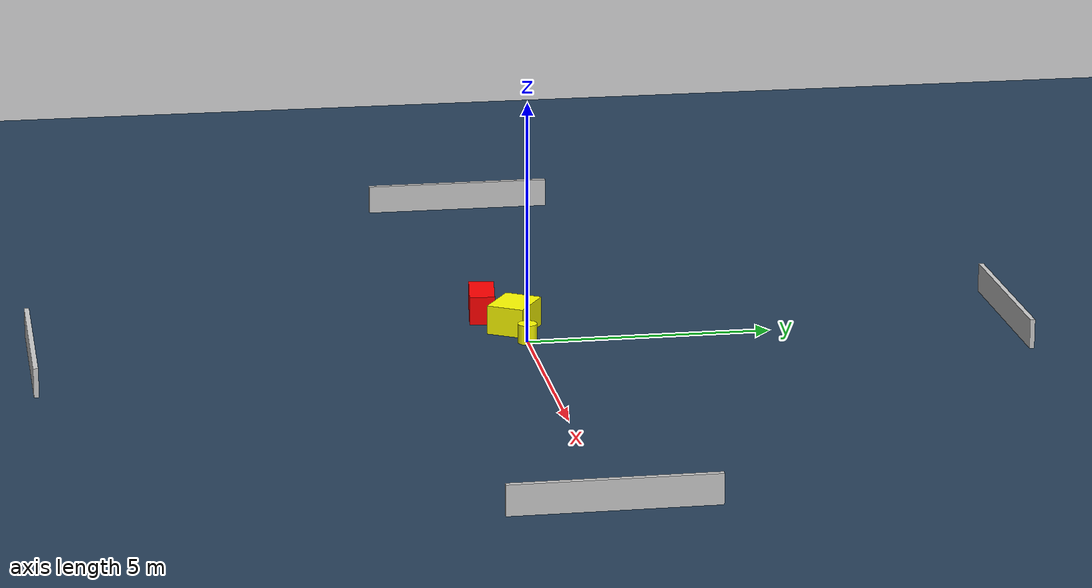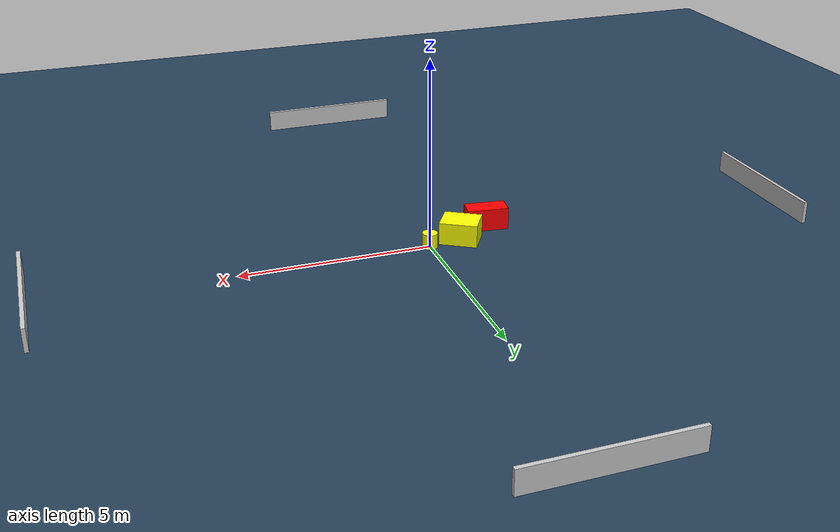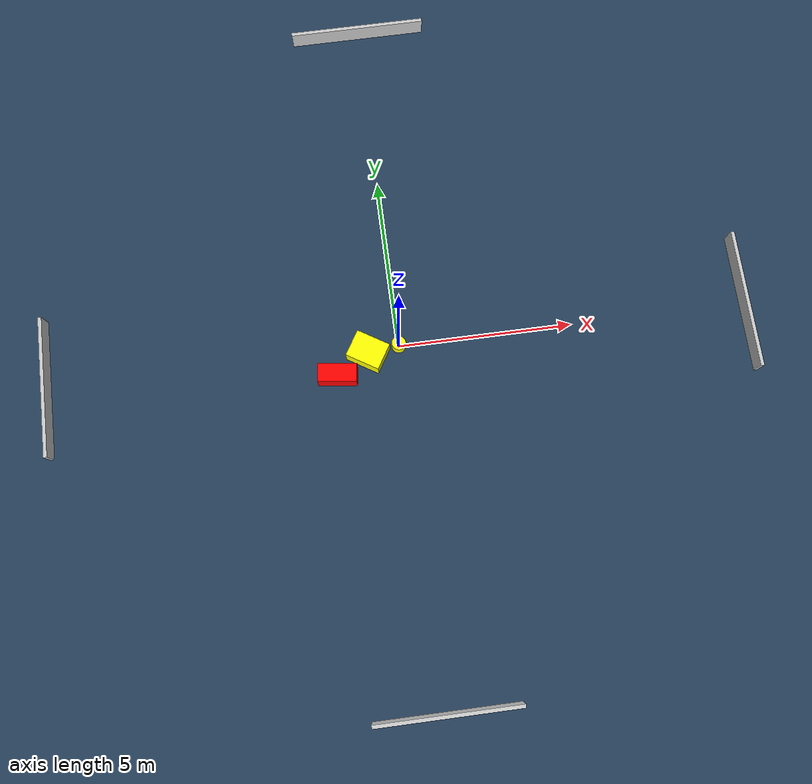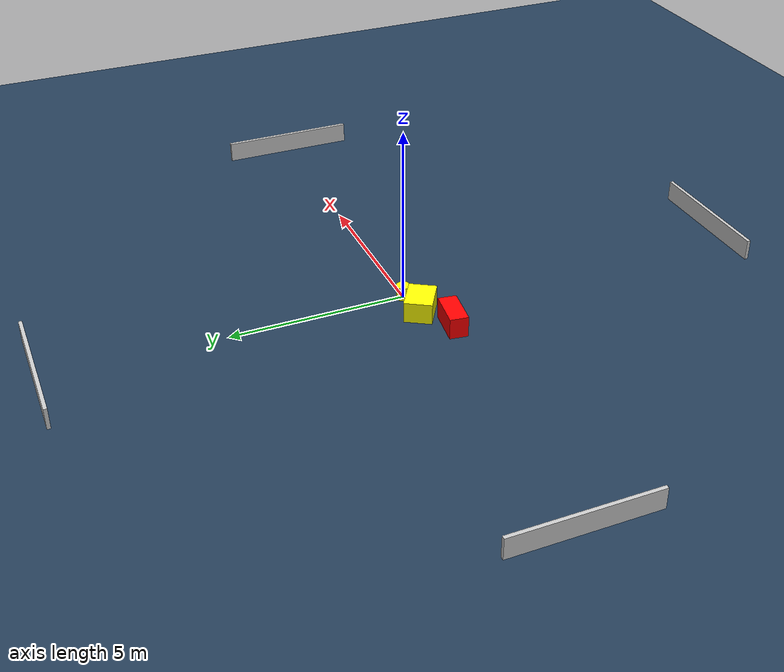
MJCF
<?xml version="1.0" ?>
<mujoco model="generated_environment">
  <option timestep="0.01" integrator="RK4" cone="elliptic"/>
  <default>
    <geom density="1"/>
  </default>
  <asset>
    <texture builtin="gradient" height="3072" name="skybox" rgb1="0.3 0.5 0.7" rgb2="0 0 0" type="skybox" width="512"/>
    <texture builtin="checker" height="300" name="groundplane" rgb1="0.2 0.3 0.4" rgb2="0.1 0.2 0.3" type="2d" width="300"/>
    <material name="groundplane" reflectance="0.2" texrepeat="5 5" texture="groundplane"/>
  </asset>
  <worldbody>
    <light dir="0 0 -1" directional="true" pos="0 0 1.5"/>
    <geom condim="3" friction="0.5 0.005 0.001" material="groundplane" name="floor" pos="0 0 0" size="0 0 0.05" type="plane"/>
    <body name="walls">
      <geom name="wall_1" condim="4" pos="-10.0 0.0 0.3" rgba="0.800000011920929 0.800000011920929 0.800000011920929 1.0" size="0.05 2.0 0.3" type="box"/>
      <geom name="wall_2" condim="4" pos="10.0 0.0 0.3" rgba="0.800000011920929 0.800000011920929 0.800000011920929 1.0" size="0.05 2.0 0.3" type="box"/>
      <geom name="wall_3" condim="4" pos="0.0 -10.0 0.3" rgba="0.800000011920929 0.800000011920929 0.800000011920929 1.0" size="2.0 0.05 0.3" type="box"/>
      <geom name="wall_4" condim="4" pos="0.0 10.0 0.3" rgba="0.800000011920929 0.800000011920929 0.800000011920929 1.0" size="2.0 0.05 0.3" type="box"/>
    </body>
    <body name="robot">
      <joint name="joint_x" type="slide" pos="0 0 0" axis="1 0 0"/>
      <joint name="joint_y" type="slide" pos="0 0 0" axis="0 1 0"/>
      <geom name="robot" type="cylinder" pos="0.0 0.0 0.2" size="0.2 0.2 0.0" mass="5.0" friction="1.0 0.005 0.0001" condim="4" rgba="1.0 1.0 0.0 1.0"/>
    </body>
    <body name="obstacle_1_movable">
      <geom name="obstacle_1_movable" condim="4" pos="-0.8939318261803776 -0.12524344856928205 0.3" euler="0 0 238.3563054989852" friction="0.0 0.005 0.001" rgba="1.0 1.0 0.0 1.0" size="0.39066024941062405 0.49858128933661156 0.3" type="box" mass="0.1"/>
      <joint type="free"/>
    </body>
    <body name="obstacle_2_static">
      <geom name="obstacle_2_static" condim="4" pos="-1.8216039190699684 -0.6646628994602378 0.3" euler="0 0 262.64726841878866" friction="0.0 0.005 0.001" rgba="1.0 0.0 0.0 1.0" size="0.260070407883556 0.5499925074370526 0.3" type="box"/>
    </body>
  </worldbody>
  <actuator>
    <motor name="actuator_x" joint="joint_x" gear="1" ctrlrange="-1 1"/>
    <motor name="actuator_y" joint="joint_y" gear="1" ctrlrange="-1 1"/>
  </actuator>
</mujoco>
